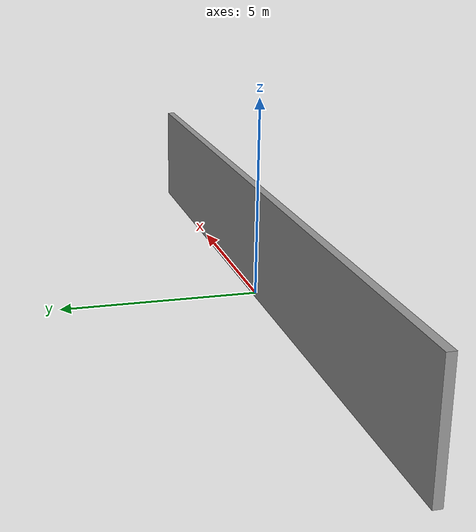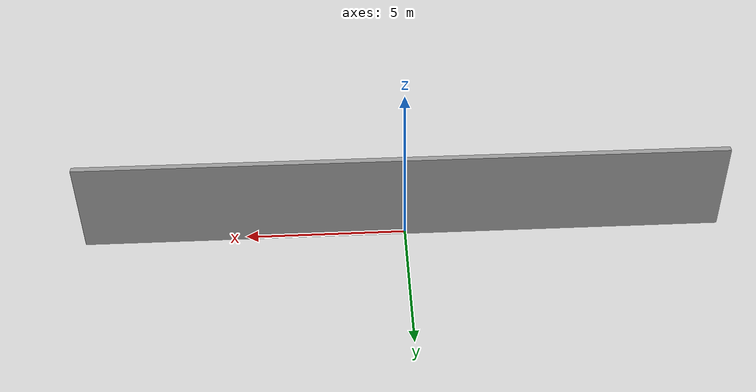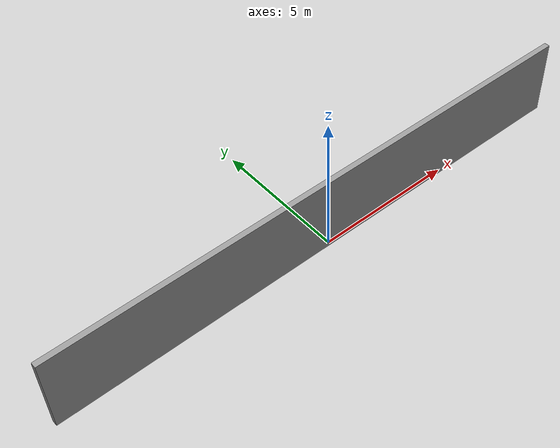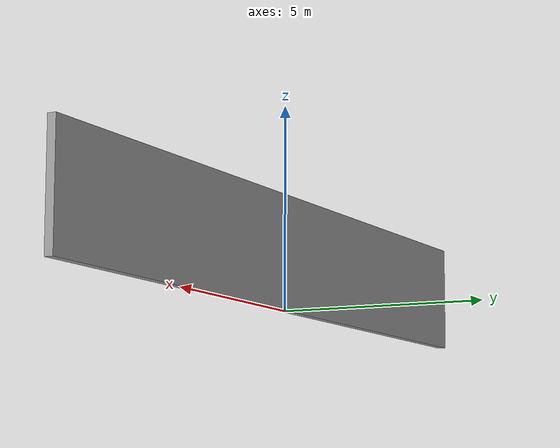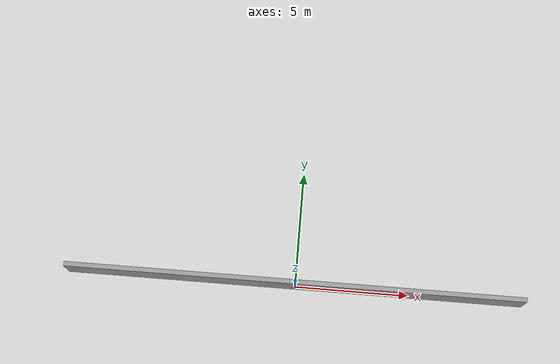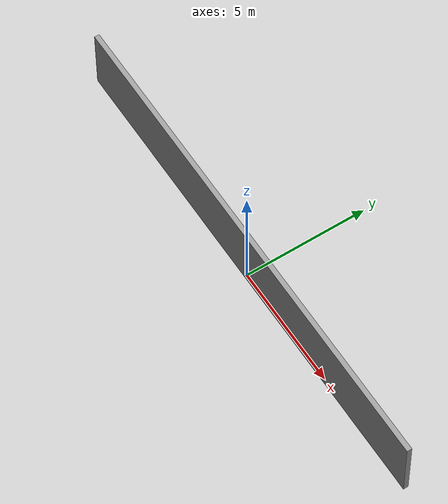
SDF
<?xml version="1.0" ?>
<sdf version="1.4">
  <model name="grey_wall">
    <static>true</static>
    <link name="link">
      <pose>0 0 1.4 0 0 0</pose>
      <collision name="collision">
        <geometry>
          <box>
            <size>20 0.2 2.8</size>
          </box>
        </geometry>
      </collision>
      <visual name="visual">
        <cast_shadows>false</cast_shadows>
        <geometry>
          <box>
            <size>20 0.2 2.8</size>
          </box>
        </geometry>
        <material>
          <script>
            <uri>model://grey_wall/materials/scripts</uri>
            <uri>model://grey_wall/materials/textures</uri>
            <name>vrc/grey_wall_square</name>
          </script>
        </material>
      </visual>
    </link>
  </model>
</sdf>
